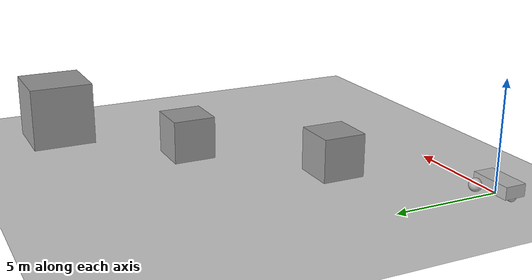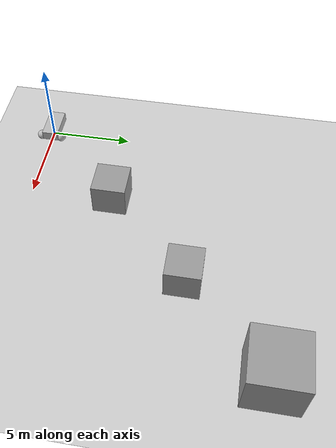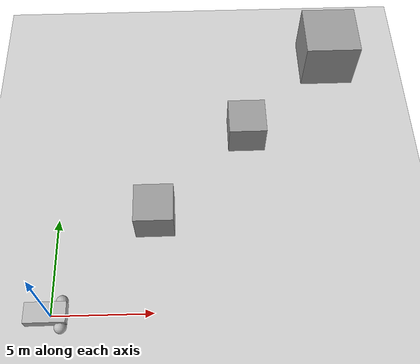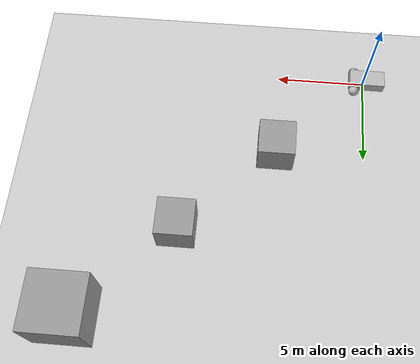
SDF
<?xml version="1.0"?>
<sdf version="1.6">
  <world name="default">

    <include>
      <uri>model://ground_plane</uri>
    </include>

    <include>
      <uri>model://sun</uri>
    </include>

    <model name='vehicle'>
      <pose>0 0 0.325 0 -0 0</pose>

      <link name='chassis'>
        <pose>-0.151427 -0 0.175 0 -0 0</pose>
        <inertial>
          <mass>1.14395</mass>
          <inertia>
            <ixx>0.126164</ixx>
            <ixy>0</ixy>
            <ixz>0</ixz>
            <iyy>0.416519</iyy>
            <iyz>0</iyz>
            <izz>0.481014</izz>
          </inertia>
        </inertial>
        <visual name='visual'>
          <geometry>
            <box>
              <size>2.01142 1 0.568726</size>
            </box>
          </geometry>
        </visual>
        <collision name='collision'>
          <geometry>
            <box>
              <size>2.01142 1 0.568726</size>
            </box>
          </geometry>
        </collision>
      </link>

      <model name='hokuyo'>
        <pose>0 0 0.509363 0 -0 0</pose>
        <link name='link'>
          <inertial>
            <mass>0.1</mass>
          </inertial>
          <visual name='visual'>
            <geometry>
              <mesh>
                <uri>model://hokuyo/meshes/hokuyo.dae</uri>
              </mesh>
            </geometry>
          </visual>
          <collision name='collision-base'>
            <pose>0 0 -0.0145 0 -0 0</pose>
            <geometry>
              <box>
                <size>0.05 0.05 0.041</size>
              </box>
            </geometry>
          </collision>
          <collision name='collision-top'>
            <pose>0 0 0.0205 0 -0 0</pose>
            <geometry>
              <cylinder>
                <radius>0.021</radius>
                <length>0.029</length>
              </cylinder>
            </geometry>
          </collision>
          <sensor name='laser' type='ray'>
            <pose>0.01 0 0.0175 0 -0 0</pose>
            <ray>
              <scan>
                <horizontal>
                  <samples>640</samples>
                  <resolution>1</resolution>
                  <min_angle>-2.26889</min_angle>
                  <max_angle>2.2689</max_angle>
                </horizontal>
              </scan>
              <range>
                <min>0.08</min>
                <max>10</max>
                <resolution>0.01</resolution>
              </range>
            </ray>
            <plugin name='laser' filename='libgazebo_ros_ray_sensor.so'>
              <output_type>sensor_msgs/PointCloud2</output_type>
            </plugin>
            <always_on>1</always_on>
            <update_rate>30</update_rate>
            <visualize>1</visualize>
          </sensor>
        </link>
      </model>

      <link name='left_wheel'>
        <pose>0.554283 0.625029 -0.025 -1.5707 0 0</pose>
        <inertial>
          <mass>2</mass>
          <inertia>
            <ixx>0.145833</ixx>
            <ixy>0</ixy>
            <ixz>0</ixz>
            <iyy>0.145833</iyy>
            <iyz>0</iyz>
            <izz>0.125</izz>
          </inertia>
        </inertial>
        <visual name='visual'>
          <geometry>
            <sphere>
              <radius>0.3</radius>
            </sphere>
          </geometry>
        </visual>
        <collision name='collision'>
          <geometry>
            <sphere>
              <radius>0.3</radius>
            </sphere>
          </geometry>
          <surface>
            <friction>
              <ode>
                <mu>1</mu>
                <mu2>1</mu2>
                <slip1>0</slip1>
                <slip2>0</slip2>
              </ode>
            </friction>
            <contact>
              <ode>
                <soft_cfm>0</soft_cfm>
                <soft_erp>0.2</soft_erp>
                <kp>1e+13</kp>
                <kd>1</kd>
                <max_vel>0.01</max_vel>
                <min_depth>0.01</min_depth>
              </ode>
            </contact>
          </surface>
        </collision>
      </link>

      <link name='right_wheel'>
        <pose>0.554282 -0.625029 -0.025 -1.5707 0 0</pose>
        <inertial>
          <mass>2</mass>
          <inertia>
            <ixx>0.145833</ixx>
            <ixy>0</ixy>
            <ixz>0</ixz>
            <iyy>0.145833</iyy>
            <iyz>0</iyz>
            <izz>0.125</izz>
          </inertia>
        </inertial>
        <visual name='visual'>
          <geometry>
            <sphere>
              <radius>0.3</radius>
            </sphere>
          </geometry>
        </visual>
        <collision name='collision'>
          <geometry>
            <sphere>
              <radius>0.3</radius>
            </sphere>
          </geometry>
          <surface>
            <friction>
              <ode>
                <mu>1</mu>
                <mu2>1</mu2>
                <slip1>0</slip1>
                <slip2>0</slip2>
              </ode>
            </friction>
            <contact>
              <ode>
                <soft_cfm>0</soft_cfm>
                <soft_erp>0.2</soft_erp>
                <kp>1e+13</kp>
                <kd>1</kd>
                <max_vel>0.01</max_vel>
                <min_depth>0.01</min_depth>
              </ode>
            </contact>
          </surface>
        </collision>
      </link>

      <link name='caster'>
        <pose>-0.957138 -0 -0.125 0 -0 0</pose>
        <inertial>
          <mass>1</mass>
          <inertia>
            <ixx>0.1</ixx>
            <ixy>0</ixy>
            <ixz>0</ixz>
            <iyy>0.1</iyy>
            <iyz>0</iyz>
            <izz>0.1</izz>
          </inertia>
        </inertial>
        <visual name='visual'>
          <geometry>
            <sphere>
              <radius>0.2</radius>
            </sphere>
          </geometry>
        </visual>
        <collision name='collision'>
          <geometry>
            <sphere>
              <radius>0.2</radius>
            </sphere>
          </geometry>
        </collision>
      </link>

      <joint name='left_wheel_joint' type='revolute'>
        <parent>chassis</parent>
        <child>left_wheel</child>
        <axis>
          <xyz>0 0 1</xyz>
          <limit>
            <lower>-1.79769e+308</lower>
            <upper>1.79769e+308</upper>
          </limit>
        </axis>
      </joint>

      <joint name='right_wheel_joint' type='revolute'>
        <parent>chassis</parent>
        <child>right_wheel</child>
        <axis>
          <xyz>0 0 1</xyz>
          <limit>
            <lower>-1.79769e+308</lower>
            <upper>1.79769e+308</upper>
          </limit>
        </axis>
      </joint>

      <joint name='caster_wheel' type='ball'>
        <parent>chassis</parent>
        <child>caster</child>
      </joint>

      <joint name='hokuyo_joint' type='fixed'>
        <parent>chassis</parent>
        <child>hokuyo::link</child>
        <pose>0 0 0 0 -0 0</pose>
        <physics>
          <ode>
            <limit>
              <cfm>0</cfm>
              <erp>0.2</erp>
            </limit>
            <suspension>
              <cfm>0</cfm>
              <erp>0.2</erp>
            </suspension>
          </ode>
        </physics>
      </joint>

      <plugin name='diff_drive' filename='libgazebo_ros_diff_drive.so'>

        <ros>
          <namespace>/demo</namespace>
          <remapping>cmd_vel:=cmd_demo</remapping>
          <remapping>odom:=odom_demo</remapping>
        </ros>

        <!-- wheels -->
        <left_joint>left_wheel_joint</left_joint>
        <right_joint>right_wheel_joint</right_joint>

        <!-- kinematics -->
        <wheel_separation>1.25</wheel_separation>
        <wheel_diameter>0.6</wheel_diameter>

        <!-- limits -->
        <max_wheel_torque>20</max_wheel_torque>
        <max_wheel_acceleration>1.0</max_wheel_acceleration>

        <!-- output -->
        <publish_odom>true</publish_odom>
        <publish_odom_tf>true</publish_odom_tf>
        <publish_wheel_tf>true</publish_wheel_tf>

        <odometry_frame>odom_demo</odometry_frame>
        <robot_base_frame>chassis</robot_base_frame>

      </plugin>

    </model>

    <model name='Obstacle1'>
      <link name='link_0'>
        <inertial>
          <mass>1</mass>
          <inertia>
            <ixx>0.166667</ixx>
            <ixy>0</ixy>
            <ixz>0</ixz>
            <iyy>0.166667</iyy>
            <iyz>0</iyz>
            <izz>0.166667</izz>
          </inertia>
          <pose>0 0 0 0 -0 0</pose>
        </inertial>
        <pose>0 0 1 0 -0 0</pose>
        <gravity>0</gravity>
        <self_collide>0</self_collide>
        <kinematic>0</kinematic>
        <enable_wind>0</enable_wind>
        <visual name='visual'>
          <pose>0 0 0 0 -0 0</pose>
          <geometry>
            <box>
              <size>2 2 2</size>
            </box>
          </geometry>
          <material>
            <lighting>1</lighting>
            <script>
              <uri>file://media/materials/scripts/gazebo.material</uri>
              <name>Gazebo/Grey</name>
            </script>
            <shader type='pixel'>
              <normal_map>__default__</normal_map>
            </shader>
            <ambient>0.3 0.3 0.3 1</ambient>
            <diffuse>0.7 0.7 0.7 1</diffuse>
            <specular>0.01 0.01 0.01 1</specular>
            <emissive>0 0 0 1</emissive>
          </material>
          <transparency>0</transparency>
          <cast_shadows>1</cast_shadows>
        </visual>
        <collision name='collision'>
          <laser_retro>0</laser_retro>
          <max_contacts>10</max_contacts>
          <pose>0 0 0 0 -0 0</pose>
          <geometry>
            <box>
              <size>2 2 2</size>
            </box>
          </geometry>
          <surface>
            <friction>
              <ode>
                <mu>1</mu>
                <mu2>1</mu2>
                <fdir1>0 0 0</fdir1>
                <slip1>0</slip1>
                <slip2>0</slip2>
              </ode>
              <torsional>
                <coefficient>1</coefficient>
                <patch_radius>0</patch_radius>
                <surface_radius>0</surface_radius>
                <use_patch_radius>1</use_patch_radius>
                <ode>
                  <slip>0</slip>
                </ode>
              </torsional>
            </friction>
            <bounce>
              <restitution_coefficient>0</restitution_coefficient>
              <threshold>1e+06</threshold>
            </bounce>
            <contact>
              <collide_without_contact>0</collide_without_contact>
              <collide_without_contact_bitmask>1</collide_without_contact_bitmask>
              <collide_bitmask>1</collide_bitmask>
              <ode>
                <soft_cfm>0</soft_cfm>
                <soft_erp>0.2</soft_erp>
                <kp>1e+13</kp>
                <kd>1</kd>
                <max_vel>0.01</max_vel>
                <min_depth>0</min_depth>
              </ode>
              <bullet>
                <split_impulse>1</split_impulse>
                <split_impulse_penetration_threshold>-0.01</split_impulse_penetration_threshold>
                <soft_cfm>0</soft_cfm>
                <soft_erp>0.2</soft_erp>
                <kp>1e+13</kp>
                <kd>1</kd>
              </bullet>
            </contact>
          </surface>
        </collision>
      </link>
      <plugin name="obstacle_mover" filename="libgazebo_ros_planar_move.so">
        <ros>
          <namespace>/obstacle1</namespace>
        </ros>
        <command_topic>cmd_vel</command_topic>
        <odometry_topic>odom</odometry_topic>
        <odometry_frame>odom</odometry_frame>
        <odometry_rate>20.0</odometry_rate>
        <robot_base_frame>link_0</robot_base_frame>
      </plugin>
      <static>0</static>
      <allow_auto_disable>1</allow_auto_disable>
      <pose>5 5 0 0 -0 0</pose>
    </model>

    <model name='Obstacle2'>
      <link name='link_0'>
        <inertial>
          <mass>1</mass>
          <inertia>
            <ixx>0.166667</ixx>
            <ixy>0</ixy>
            <ixz>0</ixz>
            <iyy>0.166667</iyy>
            <iyz>0</iyz>
            <izz>0.166667</izz>
          </inertia>
          <pose>0 0 0 0 -0 0</pose>
        </inertial>
        <pose>0 0 1 0 -0 0</pose>
        <gravity>0</gravity>
        <self_collide>0</self_collide>
        <kinematic>0</kinematic>
        <enable_wind>0</enable_wind>
        <visual name='visual'>
          <pose>0 0 0 0 -0 0</pose>
          <geometry>
            <box>
              <size>2 2 2</size>
            </box>
          </geometry>
          <material>
            <lighting>1</lighting>
            <script>
              <uri>file://media/materials/scripts/gazebo.material</uri>
              <name>Gazebo/Grey</name>
            </script>
            <shader type='pixel'>
              <normal_map>__default__</normal_map>
            </shader>
            <ambient>0.3 0.3 0.3 1</ambient>
            <diffuse>0.7 0.7 0.7 1</diffuse>
            <specular>0.01 0.01 0.01 1</specular>
            <emissive>0 0 0 1</emissive>
          </material>
          <transparency>0</transparency>
          <cast_shadows>1</cast_shadows>
        </visual>
        <collision name='collision'>
          <laser_retro>0</laser_retro>
          <max_contacts>10</max_contacts>
          <pose>0 0 0 0 -0 0</pose>
          <geometry>
            <box>
              <size>2 2 2</size>
            </box>
          </geometry>
          <surface>
            <friction>
              <ode>
                <mu>1</mu>
                <mu2>1</mu2>
                <fdir1>0 0 0</fdir1>
                <slip1>0</slip1>
                <slip2>0</slip2>
              </ode>
              <torsional>
                <coefficient>1</coefficient>
                <patch_radius>0</patch_radius>
                <surface_radius>0</surface_radius>
                <use_patch_radius>1</use_patch_radius>
                <ode>
                  <slip>0</slip>
                </ode>
              </torsional>
            </friction>
            <bounce>
              <restitution_coefficient>0</restitution_coefficient>
              <threshold>1e+06</threshold>
            </bounce>
            <contact>
              <collide_without_contact>0</collide_without_contact>
              <collide_without_contact_bitmask>1</collide_without_contact_bitmask>
              <collide_bitmask>1</collide_bitmask>
              <ode>
                <soft_cfm>0</soft_cfm>
                <soft_erp>0.2</soft_erp>
                <kp>1e+13</kp>
                <kd>1</kd>
                <max_vel>0.01</max_vel>
                <min_depth>0</min_depth>
              </ode>
              <bullet>
                <split_impulse>1</split_impulse>
                <split_impulse_penetration_threshold>-0.01</split_impulse_penetration_threshold>
                <soft_cfm>0</soft_cfm>
                <soft_erp>0.2</soft_erp>
                <kp>1e+13</kp>
                <kd>1</kd>
              </bullet>
            </contact>
          </surface>
        </collision>
      </link>
      <plugin name="obstacle_mover" filename="libgazebo_ros_planar_move.so">
        <ros>
          <namespace>/obstacle2</namespace>
        </ros>
        <command_topic>cmd_vel</command_topic>
        <odometry_topic>odom</odometry_topic>
        <odometry_frame>odom</odometry_frame>
        <odometry_rate>20.0</odometry_rate>
        <robot_base_frame>link_0</robot_base_frame>
      </plugin>
      <static>0</static>
      <allow_auto_disable>1</allow_auto_disable>
      <pose>10 10 0 0 -0 0</pose>
    </model>

    <model name='Obstacle3'>
      <link name='link_0'>
        <inertial>
          <mass>1</mass>
          <inertia>
            <ixx>0.166667</ixx>
            <ixy>0</ixy>
            <ixz>0</ixz>
            <iyy>0.166667</iyy>
            <iyz>0</iyz>
            <izz>0.166667</izz>
          </inertia>
          <pose>0 0 0 0 -0 0</pose>
        </inertial>
        <pose>0 0 1.5 0 -0 0</pose>
        <gravity>0</gravity>
        <self_collide>0</self_collide>
        <kinematic>0</kinematic>
        <enable_wind>0</enable_wind>
        <visual name='visual'>
          <pose>0 0 0 0 -0 0</pose>
          <geometry>
            <box>
              <size>3 3 3</size>
            </box>
          </geometry>
          <material>
            <lighting>1</lighting>
            <script>
              <uri>file://media/materials/scripts/gazebo.material</uri>
              <name>Gazebo/Grey</name>
            </script>
            <shader type='pixel'>
              <normal_map>__default__</normal_map>
            </shader>
            <ambient>0.3 0.3 0.3 1</ambient>
            <diffuse>0.7 0.7 0.7 1</diffuse>
            <specular>0.01 0.01 0.01 1</specular>
            <emissive>0 0 0 1</emissive>
          </material>
          <transparency>0</transparency>
          <cast_shadows>1</cast_shadows>
        </visual>
        <collision name='collision'>
          <laser_retro>0</laser_retro>
          <max_contacts>10</max_contacts>
          <pose>0 0 0 0 -0 0</pose>
          <geometry>
            <box>
              <size>3 3 3</size>
            </box>
          </geometry>
          <surface>
            <friction>
              <ode>
                <mu>1</mu>
                <mu2>1</mu2>
                <fdir1>0 0 0</fdir1>
                <slip1>0</slip1>
                <slip2>0</slip2>
              </ode>
              <torsional>
                <coefficient>1</coefficient>
                <patch_radius>0</patch_radius>
                <surface_radius>0</surface_radius>
                <use_patch_radius>1</use_patch_radius>
                <ode>
                  <slip>0</slip>
                </ode>
              </torsional>
            </friction>
            <bounce>
              <restitution_coefficient>0</restitution_coefficient>
              <threshold>1e+06</threshold>
            </bounce>
            <contact>
              <collide_without_contact>0</collide_without_contact>
              <collide_without_contact_bitmask>1</collide_without_contact_bitmask>
              <collide_bitmask>1</collide_bitmask>
              <ode>
                <soft_cfm>0</soft_cfm>
                <soft_erp>0.2</soft_erp>
                <kp>1e+13</kp>
                <kd>1</kd>
                <max_vel>0.01</max_vel>
                <min_depth>0</min_depth>
              </ode>
              <bullet>
                <split_impulse>1</split_impulse>
                <split_impulse_penetration_threshold>-0.01</split_impulse_penetration_threshold>
                <soft_cfm>0</soft_cfm>
                <soft_erp>0.2</soft_erp>
                <kp>1e+13</kp>
                <kd>1</kd>
              </bullet>
            </contact>
          </surface>
        </collision>
      </link>
      <plugin name="obstacle_mover" filename="libgazebo_ros_planar_move.so">
        <ros>
          <namespace>/obstacle3</namespace>
        </ros>
        <command_topic>cmd_vel</command_topic>
        <odometry_topic>odom</odometry_topic>
        <odometry_frame>odom</odometry_frame>
        <odometry_rate>20.0</odometry_rate>
        <robot_base_frame>link_0</robot_base_frame>
      </plugin>
      <static>0</static>
      <allow_auto_disable>1</allow_auto_disable>
      <pose>15 15 0 0 -0 0</pose>
    </model>

  </world>
</sdf>
